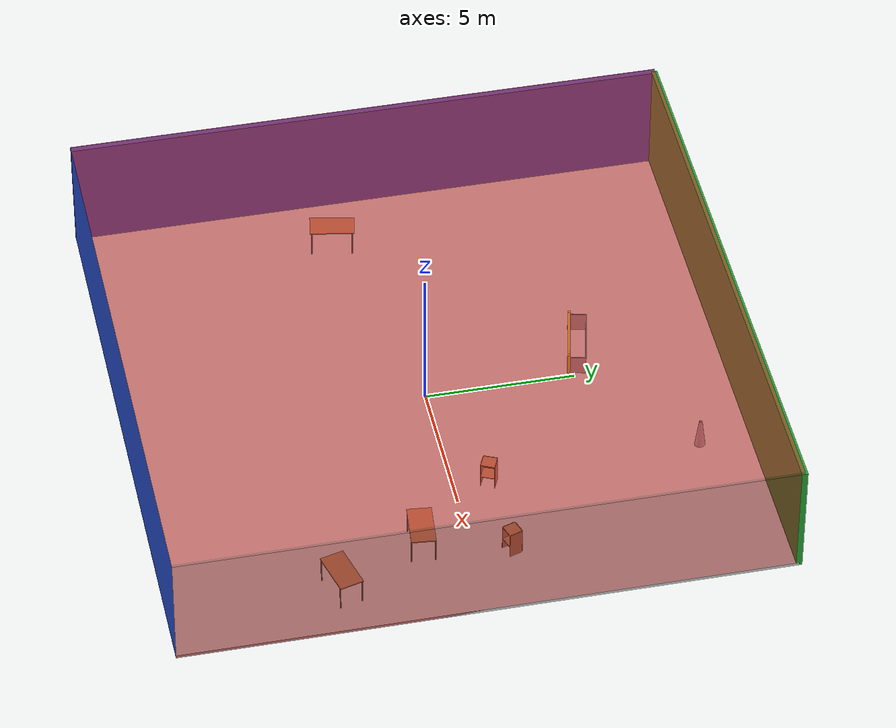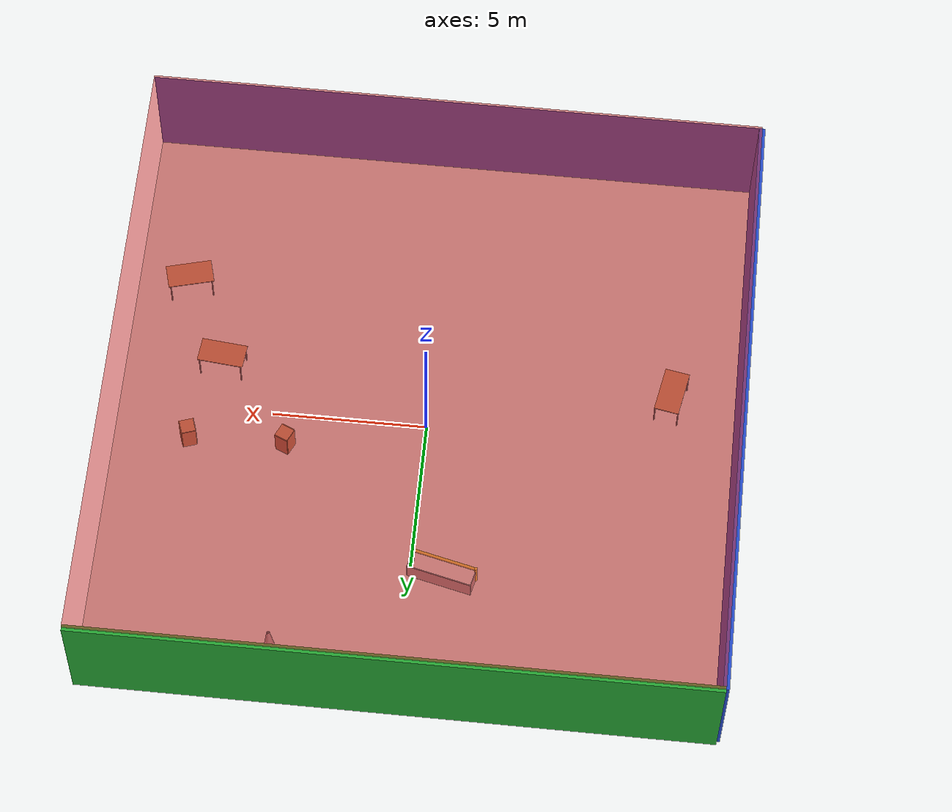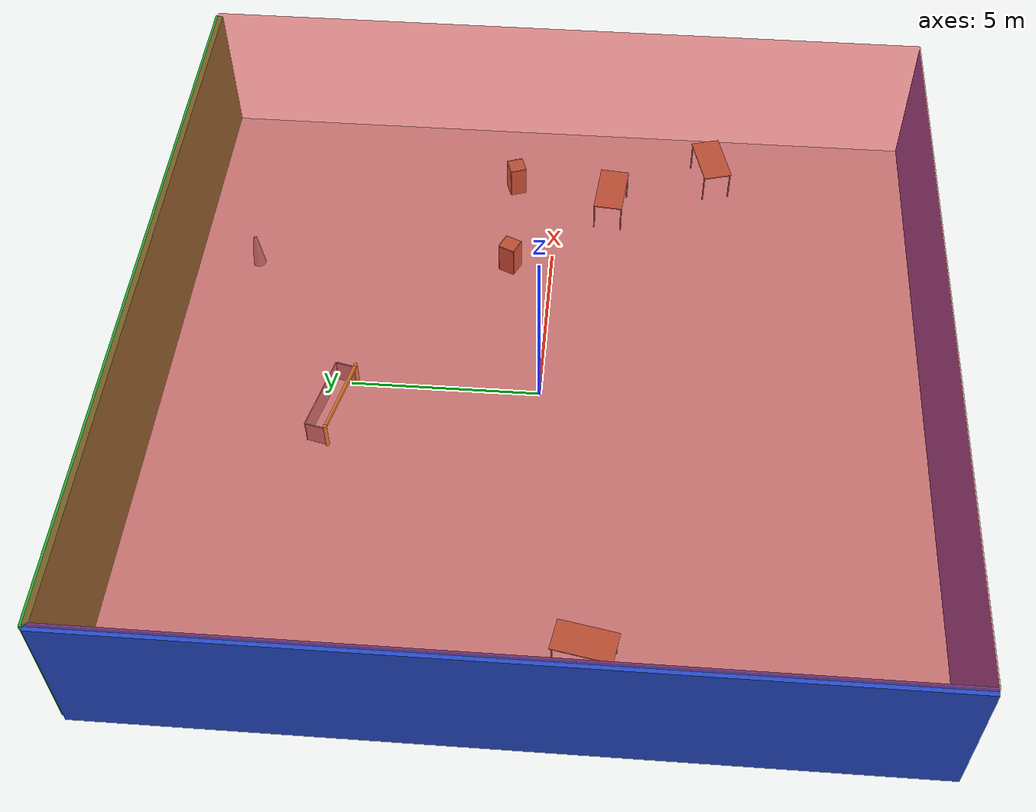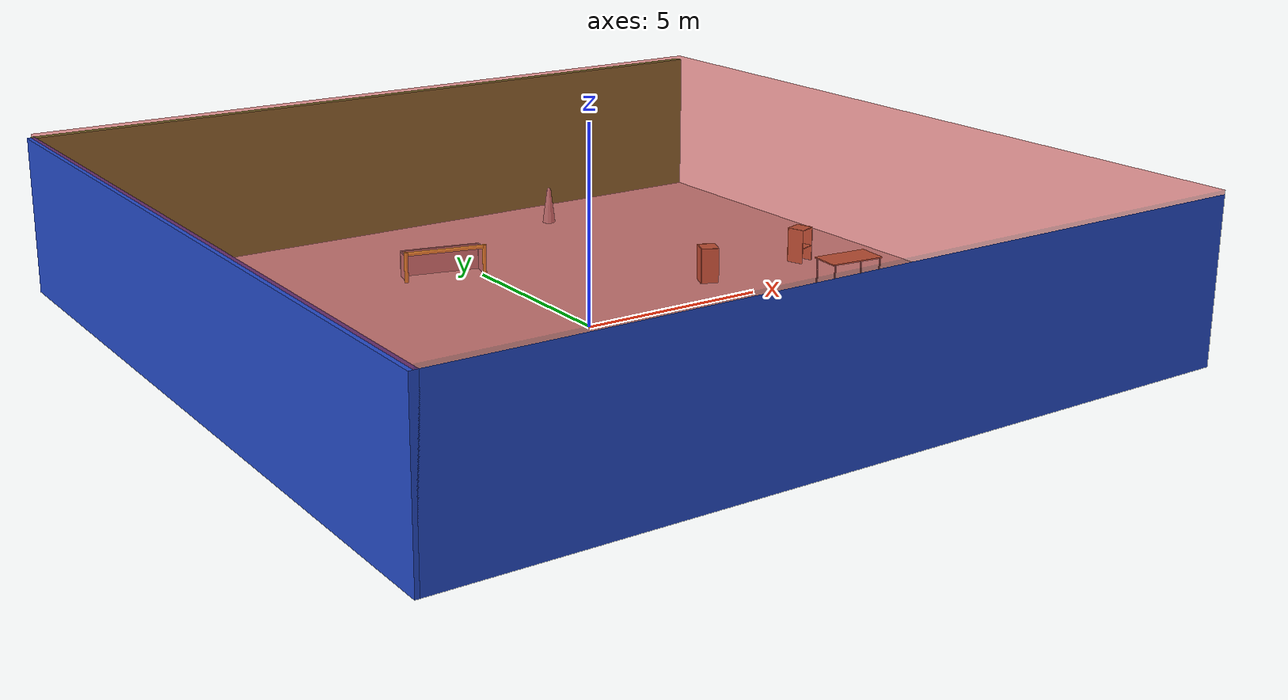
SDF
<sdf version="1.4">
 <world name="default">
  <physics type="ode">
   <max_step_size>0.001</max_step_size>
   <real_time_factor>1</real_time_factor>
   <real_time_update_rate>1000</real_time_update_rate>
   <gravity>0 0 -9.8</gravity>
  </physics>
  <scene><ambient>0.4 0.4 0.4 1</ambient><background>0.7 0.7 0.7 1</background><shadows>1</shadows></scene>
  <model name="Surrounding">
   <static>1</static>
   <link name="Ceiling">
    <collision name="Ceiling_Collision"><geometry><box><size>20 20 0.1</size></box></geometry></collision>
    <visual name="Ceiling_Visual">
     <geometry><box><size>20 20 0.1</size></box></geometry>
     <material>
      <script><uri>file://media/materials/scripts/gazebo.material</uri><name>Gazebo/RedTransparent</name></script>
     </material>
    </visual>
    <pose>0 0 4.05 0 0 0</pose>
   </link>
   <link name="Wall_South">
    <collision name="Wall_South_Collision">
     <geometry><box><size>20 0 4</size></box></geometry>
     <pose>0 0 2 0 -0 0</pose>
    </collision>
    <visual name="Wall_South_Visual">
     <pose>0 0 2 0 -0 0</pose>
     <geometry><box><size>20 0 4</size></box></geometry>
     <material>
      <script><uri>file://media/materials/scripts/gazebo.material</uri><name>Gazebo/BlueLaser</name></script>
     </material>
    </visual>
    <velocity_decay><linear>0</linear><angular>0</angular></velocity_decay>
    <pose>0 -10 0 0 -0 0</pose>
   </link>
   <link name="Wall_East">
    <collision name="Wall_21_Collision">
     <geometry><box><size>20 0 4</size></box></geometry>
     <pose>0 0 2 0 -0 0</pose>
    </collision>
    <visual name="Wall_21_Visual">
     <pose>0 0 2 0 -0 0</pose>
     <geometry><box><size>20 0 4</size></box></geometry>
     <material>
      <script><uri>file://media/materials/scripts/gazebo.material</uri><name>Gazebo/RedTransparent</name></script>
     </material>
    </visual>
    <velocity_decay><linear>0</linear><angular>0</angular></velocity_decay>
    <pose>10 0 0 0 -0 1.5708</pose>
   </link>
   <link name="Wall_North">
    <collision name="Wall_22_Collision">
     <geometry><box><size>20 0.2 4</size></box></geometry>
     <pose>0 0 2 0 -0 0</pose>
    </collision>
    <visual name="Wall_22_Visual">
     <pose>0 0 2 0 -0 0</pose>
     <geometry><box><size>20 0.2 4</size></box></geometry>
     <material>
      <script><uri>file://media/materials/scripts/gazebo.material</uri><name>Gazebo/Green</name></script>
     </material>
    </visual>
    <velocity_decay><linear>0</linear><angular>0</angular></velocity_decay>
    <pose>0 10 0 0 -0 0</pose>
   </link>
   <link name="Wall_West">
    <collision name="Wall_23_Collision">
     <geometry><box><size>20 0.2 4</size></box></geometry>
     <pose>0 0 2 0 -0 0</pose>
    </collision>
    <visual name="Wall_23_Visual">
     <pose>0 0 2 0 -0 0</pose>
     <geometry><box><size>20 0.2 4</size></box></geometry>
     <material>
      <script><uri>file://media/materials/scripts/gazebo.material</uri><name>Gazebo/Blue</name></script>
     </material>
    </visual>
    <velocity_decay><linear>0</linear><angular>0</angular></velocity_decay>
    <pose>-10 0 0 0 0 -1.5708</pose>
   </link>
   <link name="Ground_link">
    <collision name="collision">
     <pose>0 0 .05 0 -0 0</pose>
     <geometry><box><size>20 20 0.1</size></box></geometry>
    </collision>
    <visual name="visual">
     <pose>0 0 .05 0 -0 0</pose>
     <geometry><box><size>20 20 0.1</size></box></geometry>
     <material>
      <script><uri>file://media/materials/scripts/gazebo.material</uri><name>Gazebo/CeilingTiled</name></script>
     </material>
    </visual>
   </link>
   <static>1</static>
  </model>
  <spherical_coordinates>
   <surface_model>EARTH_WGS84</surface_model>
   <latitude_deg>0</latitude_deg>
   <longitude_deg>0</longitude_deg>
   <elevation>0</elevation>
   <heading_deg>0</heading_deg>
  </spherical_coordinates>
  <light name="lightball_0" type="diffuse">
   <diffuse>0.8 0.8 0.8 1</diffuse>
   <specular>0.2 0.2 0.2 1</specular>
   <attenuation>
    <range>100</range>
    <constant>0.7</constant>
    <linear>0.01</linear>
    <quadratic>0.001</quadratic>
   </attenuation>
   <direction>-0.5 0.1 -0.9</direction>
   <pose>-8.72933054065 7.85992828773 3.61526935439 0 0 0</pose>
  </light>
  <light name="lightball_1" type="diffuse">
   <diffuse>0.8 0.8 0.8 1</diffuse>
   <specular>0.2 0.2 0.2 1</specular>
   <attenuation>
    <range>100</range>
    <constant>0.7</constant>
    <linear>0.01</linear>
    <quadratic>0.001</quadratic>
   </attenuation>
   <direction>-0.5 0.1 -0.9</direction>
   <pose>3.24211588647 -5.88403915858 2.42641706965 0 0 0</pose>
  </light>
  <light name="lightball_2" type="diffuse">
   <diffuse>0.8 0.8 0.8 1</diffuse>
   <specular>0.2 0.2 0.2 1</specular>
   <attenuation>
    <range>100</range>
    <constant>0.7</constant>
    <linear>0.01</linear>
    <quadratic>0.001</quadratic>
   </attenuation>
   <direction>-0.5 0.1 -0.9</direction>
   <pose>9.3158587104 -5.71613159839 2.08200460558 0 0 0</pose>
  </light>
  <light name="lightball_3" type="diffuse">
   <diffuse>0.8 0.8 0.8 1</diffuse>
   <specular>0.2 0.2 0.2 1</specular>
   <attenuation>
    <range>100</range>
    <constant>0.7</constant>
    <linear>0.01</linear>
    <quadratic>0.001</quadratic>
   </attenuation>
   <direction>-0.5 0.1 -0.9</direction>
   <pose>8.75775371152 8.89039099992 2.01599091498 0 0 0</pose>
  </light>
  <light name="lightball_4" type="diffuse">
   <diffuse>0.8 0.8 0.8 1</diffuse>
   <specular>0.2 0.2 0.2 1</specular>
   <attenuation>
    <range>100</range>
    <constant>0.7</constant>
    <linear>0.01</linear>
    <quadratic>0.001</quadratic>
   </attenuation>
   <direction>-0.5 0.1 -0.9</direction>
   <pose>-2.81618182583 -5.04334481148 3.41164456116 0 0 0</pose>
  </light>
  <light name="lightball_5" type="diffuse">
   <diffuse>0.8 0.8 0.8 1</diffuse>
   <specular>0.2 0.2 0.2 1</specular>
   <attenuation>
    <range>100</range>
    <constant>0.7</constant>
    <linear>0.01</linear>
    <quadratic>0.001</quadratic>
   </attenuation>
   <direction>-0.5 0.1 -0.9</direction>
   <pose>2.87011212708 3.61484758344 0.90592113691 0 0 0</pose>
  </light>
  <light name="lightball_6" type="diffuse">
   <diffuse>0.8 0.8 0.8 1</diffuse>
   <specular>0.2 0.2 0.2 1</specular>
   <attenuation>
    <range>100</range>
    <constant>0.7</constant>
    <linear>0.01</linear>
    <quadratic>0.001</quadratic>
   </attenuation>
   <direction>-0.5 0.1 -0.9</direction>
   <pose>-7.26810561161 8.90992986103 3.56719233243 0 0 0</pose>
  </light>
  <include><uri>model://table</uri><pose>-7.79939699742 -1.60015899922 0 0 0 1.38721128761</pose></include>
  <include>
   <uri>model://robocup_3Dsim_goal</uri>
   <pose>-1.08863722593 5.05587614218 0 0 0 1.34094133152</pose>
  </include>
  <include><uri>model://cabinet</uri><pose>4.44292384053 1.15394983335 0 0 0 2.71326292667</pose></include>
  <include>
   <uri>model://construction_cone</uri>
   <pose>4.08213124299 8.22857736248 0 0 0 0.887675085285</pose>
  </include>
  <include><uri>model://table</uri><pose>8.25177219827 -4.40236363395 0 0 0 0.260237578494</pose></include>
  <include><uri>model://table</uri><pose>6.80202452338 -1.55156702759 0 0 0 3.0427694213</pose></include>
  <include><uri>model://cabinet</uri><pose>7.57417912615 1.22807725688 0 0 0 1.8955931246</pose></include>
 </world>
</sdf>

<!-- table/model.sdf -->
<sdf version="1.5">
  <model name="table">
    <static>true</static>
    <link name="link">
      <collision name="surface">
        <pose>0 0 1.0 0 0 0</pose>
        <geometry>
          <box>
            <size>1.5 0.8 0.03</size>
          </box>
        </geometry>
        <surface>
          <friction>
            <ode>
              <mu>0.6</mu>
              <mu2>0.6</mu2>
            </ode>
          </friction>
        </surface>
      </collision>
      <visual name="visual1">
        <pose>0 0 1.0 0 0 0</pose>
        <geometry>
          <box>
            <size>1.5 0.8 0.03</size>
          </box>
        </geometry>
        <material>
          <script>
            <uri>model://media/materials/scripts/gazebo.material</uri>
            <name>Gazebo/Wood</name>
          </script>
        </material>
      </visual>
      <collision name="front_left_leg">
        <pose>0.68 0.38 0.5 0 0 0</pose>
        <geometry>
          <cylinder>
            <radius>0.02</radius>
            <length>1.0</length>
          </cylinder>
        </geometry>
      </collision>
      <visual name="front_left_leg">
        <pose>0.68 0.38 0.5 0 0 0</pose>
        <geometry>
          <cylinder>
            <radius>0.02</radius>
            <length>1.0</length>
          </cylinder>
        </geometry>
        <material>
          <script>
            <uri>model://media/materials/scripts/gazebo.material</uri>
            <name>Gazebo/Grey</name>
          </script>
        </material>
      </visual>
      <collision name="front_right_leg">
        <pose>0.68 -0.38 0.5 0 0 0</pose>
        <geometry>
          <cylinder>
            <radius>0.02</radius>
            <length>1.0</length>
          </cylinder>
        </geometry>
      </collision>
      <visual name="front_right_leg">
        <pose>0.68 -0.38 0.5 0 0 0</pose>
        <geometry>
          <cylinder>
            <radius>0.02</radius>
            <length>1.0</length>
          </cylinder>
        </geometry>
        <material>
          <script>
            <uri>model://media/materials/scripts/gazebo.material</uri>
            <name>Gazebo/Grey</name>
          </script>
        </material>
      </visual>
      <collision name="back_right_leg">
        <pose>-0.68 -0.38 0.5 0 0 0</pose>
        <geometry>
          <cylinder>
            <radius>0.02</radius>
            <length>1.0</length>
          </cylinder>
        </geometry>
      </collision>
      <visual name="back_right_leg">
        <pose>-0.68 -0.38 0.5 0 0 0</pose>
        <geometry>
          <cylinder>
            <radius>0.02</radius>
            <length>1.0</length>
          </cylinder>
        </geometry>
        <material>
          <script>
            <uri>model://media/materials/scripts/gazebo.material</uri>
            <name>Gazebo/Grey</name>
          </script>
        </material>
      </visual>
      <collision name="back_left_leg">
        <pose>-0.68 0.38 0.5 0 0 0</pose>
        <geometry>
          <cylinder>
            <radius>0.02</radius>
            <length>1.0</length>
          </cylinder>
        </geometry>
      </collision>
      <visual name="back_left_leg">
        <pose>-0.68 0.38 0.5 0 0 0</pose>
        <geometry>
          <cylinder>
            <radius>0.02</radius>
            <length>1.0</length>
          </cylinder>
        </geometry>
        <material>
          <script>
            <uri>model://media/materials/scripts/gazebo.material</uri>
            <name>Gazebo/Grey</name>
          </script>
        </material>
      </visual>
    </link>
  </model>
</sdf>

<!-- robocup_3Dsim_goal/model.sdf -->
<sdf version="1.5">
  <model name="robocup_3d_goal">
    <static>true</static>
    <link name="left_post">
      <pose>0 1.05 0.45 0 0 0</pose>
      <collision name="collision">
        <geometry>
          <cylinder>
            <radius>0.05</radius>
            <length>0.9</length>
          </cylinder>
        </geometry>
      </collision>
      <visual name="visual">
        <geometry>
          <cylinder>
            <radius>0.05</radius>
            <length>0.9</length>
          </cylinder>
        </geometry>
        <material>
          <script>
            <uri>file://media/materials/scripts/gazebo.material</uri>
            <name>Gazebo/ZincYellow</name>
          </script>
        </material>
      </visual>
    </link>
    <link name="left_support_horiz_lower">
      <pose>0.30 1.05 0.01 0 0 0</pose>
      <collision name="collision">
        <geometry>
          <box>
            <size>0.50 0.02 0.02</size>
          </box>
        </geometry>
      </collision>
      <visual name="visual">
        <geometry>
          <box>
            <size>0.50 0.02 0.02</size>
          </box>
        </geometry>
        <material>
          <script>
            <uri>file://media/materials/scripts/gazebo.material</uri>
            <name>Gazebo/White</name>
          </script>
        </material>
      </visual>
    </link>
    <link name="left_support_horiz_upper">
      <pose>0.30 1.05 0.79 0 0 0</pose>
      <collision name="collision">
        <geometry>
          <box>
            <size>0.50 0.02 0.02</size>
          </box>
        </geometry>
      </collision>
      <visual name="visual">
        <geometry>
          <box>
            <size>0.50 0.02 0.02</size>
          </box>
        </geometry>
        <material>
          <script>
            <uri>file://media/materials/scripts/gazebo.material</uri>
            <name>Gazebo/White</name>
          </script>
        </material>
      </visual>
    </link>
    <link name="left_support_vertical">
      <pose>0.56 1.05 0.4 0 1.5708 0</pose>
      <collision name="collision">
        <geometry>
          <box>
            <size>0.80 0.02 0.02</size>
          </box>
        </geometry>
      </collision>
      <visual name="visual">
        <geometry>
          <box>
            <size>0.80 0.02 0.02</size>
          </box>
        </geometry>
        <material>
          <script>
            <uri>file://media/materials/scripts/gazebo.material</uri>
            <name>Gazebo/White</name>
          </script>
        </material>
      </visual>
    </link>
    <link name="right_support_horiz_lower">
      <pose>0.30 -1.05 0.01 0 0 0</pose>
      <collision name="collision">
        <geometry>
          <box>
            <size>0.50 0.02 0.02</size>
          </box>
        </geometry>
      </collision>
      <visual name="visual">
        <geometry>
          <box>
            <size>0.50 0.02 0.02</size>
          </box>
        </geometry>
        <material>
          <script>
            <uri>file://media/materials/scripts/gazebo.material</uri>
            <name>Gazebo/White</name>
          </script>
        </material>
      </visual>
    </link>
    <link name="right_support_horiz_upper">
      <pose>0.30 -1.05 0.79 0 0 0</pose>
      <collision name="collision">
        <geometry>
          <box>
            <size>0.50 0.02 0.02</size>
          </box>
        </geometry>
      </collision>
      <visual name="visual">
        <geometry>
          <box>
            <size>0.50 0.02 0.02</size>
          </box>
        </geometry>
        <material>
          <script>
            <uri>file://media/materials/scripts/gazebo.material</uri>
            <name>Gazebo/White</name>
          </script>
        </material>
      </visual>
    </link>
    <link name="right_support_vertical">
      <pose>0.56 -1.05 0.4 0 1.5708 0</pose>
      <collision name="collision">
        <geometry>
          <box>
            <size>0.80 0.02 0.02</size>
          </box>
        </geometry>
      </collision>
      <visual name="visual">
        <geometry>
          <box>
            <size>0.80 0.02 0.02</size>
          </box>
        </geometry>
        <material>
          <script>
            <uri>file://media/materials/scripts/gazebo.material</uri>
            <name>Gazebo/White</name>
          </script>
        </material>
      </visual>
    </link>
    <link name="center_support_horiz_lower">
      <pose>0.56 0 0.01 0 1.5708 0</pose>
      <collision name="collision">
        <geometry>
          <box>
            <size>0.02 2.08 0.02</size>
          </box>
        </geometry>
      </collision>
      <visual name="visual">
        <geometry>
          <box>
            <size>0.02 2.08 0.02</size>
          </box>
        </geometry>
        <material>
          <script>
            <uri>file://media/materials/scripts/gazebo.material</uri>
            <name>Gazebo/White</name>
          </script>
        </material>
      </visual>
    </link>
    <link name="center_support_horiz_upper">
      <pose>0.56 0 0.79 0 1.5708 0</pose>
      <collision name="collision">
        <geometry>
          <box>
            <size>0.02 2.08 0.02</size>
          </box>
        </geometry>
      </collision>
      <visual name="visual">
        <geometry>
          <box>
            <size>0.02 2.08 0.02</size>
          </box>
        </geometry>
        <material>
          <script>
            <uri>file://media/materials/scripts/gazebo.material</uri>
            <name>Gazebo/White</name>
          </script>
        </material>
      </visual>
    </link>
    <link name="right_post">
      <pose>0 -1.05 0.45 0 0 0</pose>
      <collision name="collision">
        <geometry>
          <cylinder>
            <radius>0.05</radius>
            <length>0.9</length>
          </cylinder>
        </geometry>
      </collision>
      <visual name="visual">
        <geometry>
          <cylinder>
            <radius>0.05</radius>
            <length>0.9</length>
          </cylinder>
        </geometry>
        <material>
          <script>
            <uri>file://media/materials/scripts/gazebo.material</uri>
            <name>Gazebo/ZincYellow</name>
          </script>
        </material>
      </visual>
    </link>
    <link name="crossbar">
      <pose>0 0 0.85 1.57 1.57 0</pose>
      <collision name="collision">
        <geometry>
          <cylinder>
            <radius>0.05</radius>
            <length>2.0</length>
          </cylinder>
        </geometry>
      </collision>
      <visual name="visual">
        <geometry>
          <cylinder>
            <radius>0.05</radius>
            <length>2.0</length>
          </cylinder>
        </geometry>
        <material>
          <script>
            <uri>file://media/materials/scripts/gazebo.material</uri>
            <name>Gazebo/ZincYellow</name>
          </script>
        </material>
      </visual>
    </link>
    <link name="center_net">
      <pose>0.56 0 0.40 0 0 0</pose>
      <collision name="collision">
        <geometry>
          <box>
            <size>0.01 2.1 0.80</size>
          </box>
        </geometry>
      </collision>
      <visual name="visual">
        <geometry>
          <box>
            <size>0.01 2.1 0.80</size>
          </box>
        </geometry>
        <material>
          <script>
            <uri>model://../model_source/models/robocup09_spl_field/materials/scripts/</uri>
            <uri>model://../model_source/models/robocup09_spl_field/materials/textures/</uri>
            <name>RoboCup/Net</name>
          </script>
        </material>
      </visual>
    </link>
    <link name="left_net">
      <pose>0.30 1.05 0.40 0 0 0</pose>
      <collision name="collision">
        <geometry>
          <box>
            <size>0.50 0.01 0.76</size>
          </box>
        </geometry>
      </collision>
      <visual name="visual">
        <geometry>
          <box>
            <size>0.50 0.01 0.76</size>
          </box>
        </geometry>
        <material>
          <script>
            <uri>model://../model_source/models/robocup09_spl_field/materials/scripts/</uri>
            <uri>model://../model_source/models/robocup09_spl_field/materials/textures/</uri>
            <name>RoboCup/Net</name>
          </script>
        </material>
      </visual>
    </link>
    <link name="right_net">
      <pose>0.30 -1.05 0.40 0 0 0</pose>
      <collision name="collision">
        <geometry>
          <box>
            <size>0.50 0.01 0.76</size>
          </box>
        </geometry>
      </collision>
      <visual name="visual">
        <geometry>
          <box>
            <size>0.50 0.01 0.76</size>
          </box>
        </geometry>
        <material>
          <script>
            <uri>model://../model_source/models/robocup09_spl_field/materials/scripts/</uri>
            <uri>model://../model_source/models/robocup09_spl_field/materials/textures/</uri>
            <name>RoboCup/Net</name>
          </script>
        </material>
      </visual>
    </link>
  </model>
</sdf>

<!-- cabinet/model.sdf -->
<sdf version="1.5">
  <model name="cabinet">
    <static>true</static>
    <link name="cabinet_bottom_plate">
      <inertial>
        <pose>0 0 -1 0 0 0</pose>
        <inertia>
          <ixx>2.050000</ixx>
          <ixy>0</ixy>
          <ixz>0</ixz>
          <iyy>2.050000</iyy>
          <iyz>0</iyz>
          <izz>2.050000</izz>
        </inertia>
        <mass>25.000000</mass>
      </inertial>
      <collision name="cabinet_bottom_plate_geom">
        <pose>0 0 0.010000 0 0 0</pose>
        <geometry>
          <box>
            <size>0.450000 0.450000 0.020000</size>
          </box>
        </geometry>
      </collision>
      <visual name="cabinet_bottom_plate_geom_visual">
        <pose>0 0 0.010000 0 0 0</pose>
        <geometry>
          <box>
            <size>0.450000 0.450000 0.020000</size>
          </box>
        </geometry>
        <material>
          <script>
            <uri>model://media/materials/scripts/gazebo.material</uri>
            <name>Gazebo/Wood</name>
          </script>
        </material>
      </visual>
      <collision name="cabinet_bottom_plate_geom_cabinet_back_plate">
        <pose>0.235000 0 0.510000 0 0 0</pose>
        <geometry>
          <box>
            <size>0.020000 0.450000 1.020000</size>
          </box>
        </geometry>
      </collision>
      <visual name="cabinet_bottom_plate_geom_cabinet_back_plate_visual">
        <pose>0.235000 0 0.510000 0 0 0</pose>
        <geometry>
          <box>
            <size>0.020000 0.450000 1.020000</size>
          </box>
        </geometry>
        <material>
          <script>
            <uri>model://media/materials/scripts/gazebo.material</uri>
            <name>Gazebo/Wood</name>
          </script>
        </material>
      </visual>
      <collision name="cabinet_bottom_plate_geom_cabinet_left_plate">
        <pose>0 0.235000 0.510000 0 0 0</pose>
        <geometry>
          <box>
            <size>0.450000 0.020000 1.020000</size>
          </box>
        </geometry>
      </collision>
      <visual name="cabinet_bottom_plate_geom_cabinet_left_plate_visual">
        <pose>0 0.235000 0.510000 0 0 0</pose>
        <geometry>
          <box>
            <size>0.450000 0.020000 1.020000</size>
          </box>
        </geometry>
        <material>
          <script>
            <uri>model://media/materials/scripts/gazebo.material</uri>
            <name>Gazebo/Wood</name>
          </script>
        </material>
      </visual>
      <collision name="cabinet_bottom_plate_geom_cabinet_middle_plate">
        <pose>0 0 0.510000 0 0 0</pose>
        <geometry>
          <box>
            <size>0.450000 0.450000 0.020000</size>
          </box>
        </geometry>
      </collision>
      <visual name="cabinet_bottom_plate_geom_cabinet_middle_plate_visual">
        <pose>0 0 0.510000 0 0 0</pose>
        <geometry>
          <box>
            <size>0.450000 0.450000 0.020000</size>
          </box>
        </geometry>
        <material>
          <script>
            <uri>model://media/materials/scripts/gazebo.material</uri>
            <name>Gazebo/Wood</name>
          </script>
        </material>
      </visual>
      <collision name="cabinet_bottom_plate_geom_cabinet_right_plate">
        <pose>0 -0.235000 0.510000 0 0 0</pose>
        <geometry>
          <box>
            <size>0.450000 0.020000 1.020000</size>
          </box>
        </geometry>
      </collision>
      <visual name="cabinet_bottom_plate_geom_cabinet_right_plate_visual">
        <pose>0 -0.235000 0.510000 0 0 0</pose>
        <geometry>
          <box>
            <size>0.450000 0.020000 1.020000</size>
          </box>
        </geometry>
        <material>
          <script>
            <uri>model://media/materials/scripts/gazebo.material</uri>
            <name>Gazebo/Wood</name>
          </script>
        </material>
      </visual>
      <collision name="cabinet_bottom_plate_geom_cabinet_top_plate">
        <pose>0 0 1.010000 0 0 0</pose>
        <geometry>
          <box>
            <size>0.450000 0.450000 0.020000</size>
          </box>
        </geometry>
      </collision>
      <visual name="cabinet_bottom_plate_geom_cabinet_top_plate_visual">
        <pose>0 0 1.010000 0 0 0</pose>
        <geometry>
          <box>
            <size>0.450000 0.450000 0.020000</size>
          </box>
        </geometry>
        <material>
          <script>
            <uri>model://media/materials/scripts/gazebo.material</uri>
            <name>Gazebo/Wood</name>
          </script>
        </material>
      </visual>
    </link>
  </model>
</sdf>

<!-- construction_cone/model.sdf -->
<sdf version="1.5">
  <model name="Construction Cone">
    <link name="link">
      <collision name="collision">
        <geometry>
          <mesh>
            <scale>10 10 10</scale>
            <uri>file://isr-testbed/construction_cone/meshes/construction_cone.dae</uri>
          </mesh>
        </geometry>
      </collision>
      <visual name="visual">
        <geometry>
          <mesh>
            <scale>10 10 10</scale>
            <uri>file://isr-testbed/construction_cone/meshes/construction_cone.dae</uri>
          </mesh>
        </geometry>
      </visual>
    </link>
  </model>
</sdf>
